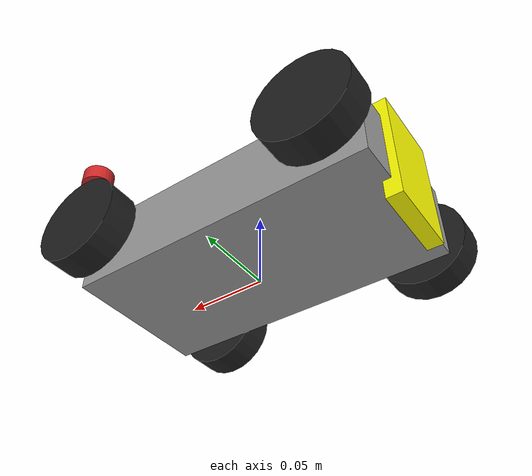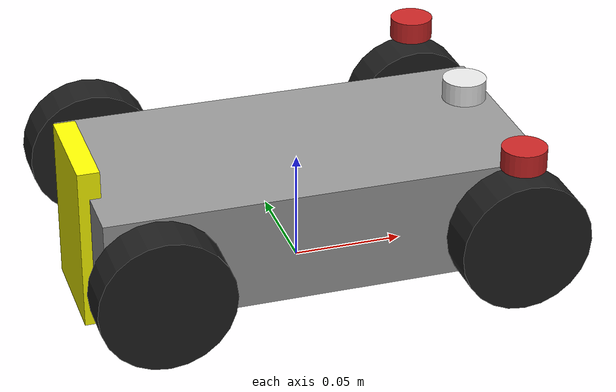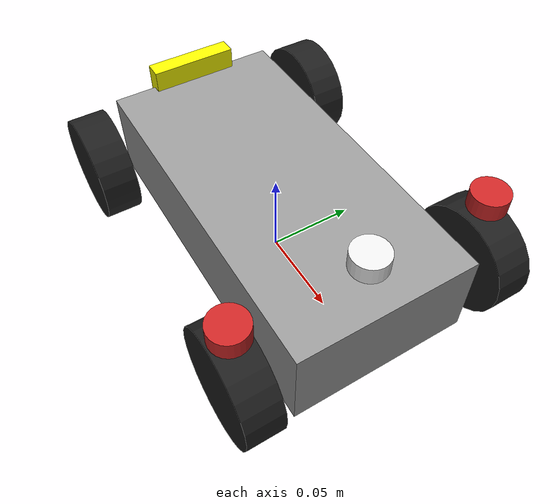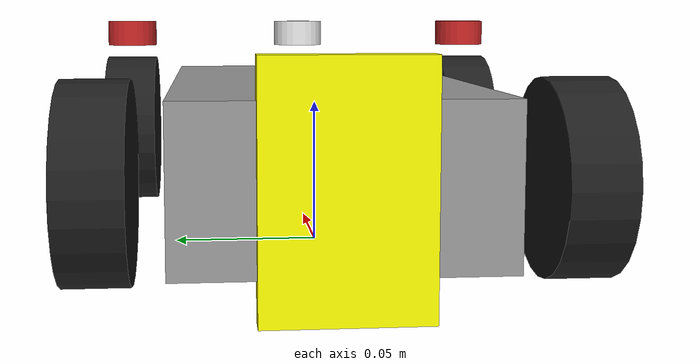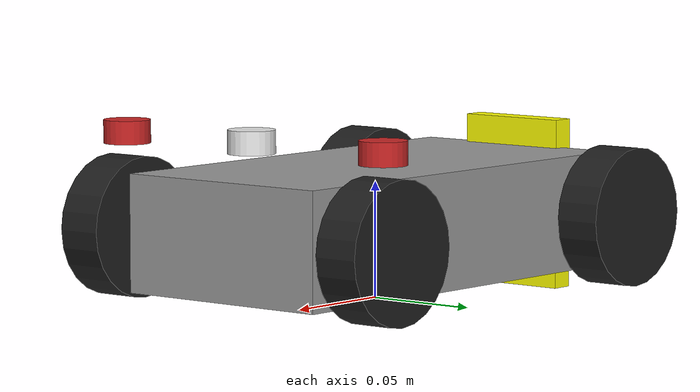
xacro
<?xml version="1.0"?>
<robot name="racebot" xmlns:xacro="http://wiki.ros.org/xacro">
  <!-- Include xacro for inertials, materials and wheels -->
  <xacro:include filename="$(find nav2_bringup)/ackermann_model/steer_base/wheel.xacro" />

  <xacro:property name="M_PI" value="3.1415926535897931" />
  <xacro:arg name="lidar_visual" default="true" />

  <!-- Math constants -->
  <xacro:property name="deg_to_rad" value="0.01745329251994329577" />

  <!-- Robot base dimensions -->
  <xacro:property name="base_length" value="0.2" />
  <xacro:property name="base_width" value="0.1" />
  <xacro:property name="base_height" value="0.05" />
  <xacro:property name="base_mass" value="300" />

  <!-- Wheel link dimensions -->
  <xacro:property name="wheel_radius" value="0.03" />
  <xacro:property name="wheel_thickness" value="0.02" />
  <xacro:property name="wheel_mass" value="30.0" />

  <!-- Steering link dimensions -->
  <xacro:property name="steer_radius" value="0.01" />
  <xacro:property name="steer_thickness" value="0.01" />
  <xacro:property name="steer_mass" value="15" />

  <!-- Axle positions -->
  <xacro:property name="axle_offset" value="0.02" />
  <xacro:property name="steer_offset" value="0.01" />

  <link name="base_footprint" />
  <joint name="base_joint" type="fixed">
    <parent link="base_footprint" />
    <child link="base_link" />
    <origin xyz="0 0 ${base_height/1.5}" rpy="0 0 0" />
  </joint>

  <!-- Base link -->
  <link name="base_link">
    <visual>
      <origin xyz="0 0 0" rpy="0 0 0" />
      <geometry>
        <box size="${base_length} ${base_width} ${base_height}" />
      </geometry>
      <material name="gray" />
    </visual>
    <collision>
      <origin xyz="0 0 0" rpy="0 0 0" />
      <geometry>
        <box size="${base_length/2} ${base_width/2} ${base_height/2}" />
      </geometry>
    </collision>
    <xacro:solid_cuboid_inertial rpy="0 0 0" xyz="0 0 0" mass="${base_mass}" x="${base_length}"
      y="${base_width}" z="${base_height}" />
  </link>

  <!-- Front steer and rear wheel joints required for ackermann_steering_controller -->
  <xacro:front_steer name="front" parent="base" steer_radius="${steer_radius}"
    steer_thickness="${steer_thickness}"
    steer_mass="${steer_mass}" base_length="${base_length}" base_width="${base_width}"
    axle_offset="${axle_offset}"
    steer_height="${wheel_radius+steer_offset}"></xacro:front_steer>

  <!-- Rear Link -->
  <xacro:rear_wheel name="rear" parent="base" wheel_radius="${wheel_radius/4}"
    wheel_thickness="${wheel_thickness/2}" wheel_mass="${wheel_mass/32}">
    <origin xyz="${-base_length/2+axle_offset} 0 0" rpy="${-90 * deg_to_rad} 0 0" />
  </xacro:rear_wheel>

  <!-- Steerable front wheels -->
  <xacro:front_wheel_lr name="front_right" parent="base" reflect="-1" wheel_radius="${wheel_radius}"
    wheel_thickness="${wheel_thickness}"
    wheel_mass="${wheel_mass}" steer_radius="${steer_radius}" steer_thickness="${steer_thickness}"
    steer_mass="${steer_mass}"
    base_length="${base_length}" base_width="${base_width}" axle_offset="${axle_offset}"
    steer_height="${wheel_radius+steer_offset}"></xacro:front_wheel_lr>

  <xacro:front_wheel_lr name="front_left" parent="base" reflect="1" wheel_radius="${wheel_radius}"
    wheel_thickness="${wheel_thickness}"
    wheel_mass="${wheel_mass}" steer_radius="${steer_radius}" steer_thickness="${steer_thickness}"
    steer_mass="${steer_mass}"
    base_length="${base_length}" base_width="${base_width}" axle_offset="${axle_offset}"
    steer_height="${wheel_radius+steer_offset}"></xacro:front_wheel_lr>

  <!-- Rear wheels -->
  <xacro:rear_wheel_lr name="rear_right" parent="base" wheel_radius="${wheel_radius}"
    wheel_thickness="${wheel_thickness}" wheel_mass="${wheel_mass}">
    <origin xyz="${-base_length/2+axle_offset} ${-base_width/2-axle_offset} 0"
      rpy="${-90 * deg_to_rad} 0 0" />
  </xacro:rear_wheel_lr>

  <xacro:rear_wheel_lr name="rear_left" parent="base" wheel_radius="${wheel_radius}"
    wheel_thickness="${wheel_thickness}" wheel_mass="${wheel_mass}">
    <origin xyz="${-base_length/2+axle_offset} ${+base_width/2+axle_offset} 0"
      rpy="${-90 * deg_to_rad} 0 0" />
  </xacro:rear_wheel_lr>

  <!-- Colour -->
  <gazebo reference="base_link">
    <material>Gazebo/Residential</material>
  </gazebo>

  <!-- 虚拟方向盘 -->
  <!-- Virtual Steering wheel -->
  <link name="virtual_steer_link">
    <visual>
      <origin xyz="0.0 0.0 0.0" rpy="0.0 0.0 0.0" />
      <geometry>
        <box size="0.01 0.05 0.075" />
      </geometry>
      <material name="">
        <color rgba="1.0 1.0 0.0 1" />
      </material>
    </visual>
    <inertial>
      <origin xyz="0.0 0.0 0.0" rpy="0.0 0.0 0.0" />
      <mass value="0.001" />
      <inertia ixx="0.0" ixy="0.0" ixz="0.0" iyy="0.0" iyz="0.0" izz="0.0" />
    </inertial>
  </link>
  <joint name="virtual_steering_wheel_joint" type="revolute">
    <origin xyz="${-base_length/2} 0.0 0.0" rpy="0.0 0.0 0.0" />
    <parent link="base_link" />
    <child link="virtual_steer_link" />
    <axis xyz="-1 0 0" />
    <limit lower="-3" upper="3" effort="200" velocity="20" />
  </joint>

</robot>

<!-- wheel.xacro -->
<robot name="wheel" xmlns:xacro="http://wiki.ros.org/xacro">
  <!-- Include xacro for materials and inertials -->
  <xacro:include filename="$(find nav2_bringup)/ackermann_model/steer_base/materials.xacro" />
  <xacro:include filename="$(find nav2_bringup)/ackermann_model/steer_base/inertials.xacro" />

  <!-- Properties -->
  <xacro:property name="steer_effort" value="10.0" />
  <xacro:property name="steer_velocity" value="10.0" />
  <xacro:property name="steer_limit_deg" value="45.0" />
  <xacro:property name="deg_to_rad" value="0.01745329251994329577" />

  <!-- Bicycle model front steering link (required for steer_drive_controller) -->
  <xacro:macro name="front_steer"
    params="
      name
      parent
      steer_radius
      steer_thickness
      steer_mass
      base_length
      base_width
      axle_offset
      steer_height">
    <link name="${name}_steer_link">
      <visual>
        <origin xyz="0 0 0" rpy="0 0 0" />
        <geometry>
          <cylinder radius="${steer_radius}" length="${steer_thickness}" />
        </geometry>
        <material name="white" />
      </visual>
      <collision>
        <origin xyz="0 0 0" rpy="0 0 0" />
        <geometry>
          <cylinder radius="${steer_radius}" length="${steer_thickness}" />
        </geometry>
      </collision>
      <xacro:solid_cylinder_inertial
        rpy="0 0 0" xyz="0 0 0"
        mass="${steer_mass}"
        radius="${steer_radius}" length="${steer_thickness}" />
    </link>

    <joint name="${name}_steer_joint" type="revolute">
      <parent link="${parent}_link" />
      <child link="${name}_steer_link" />
      <origin xyz="${base_length/2-axle_offset} 0 ${steer_height}" rpy="0 0 0" />
      <axis xyz="0 0 1" />
      <limit effort="${steer_effort}"
        lower="${-180.0 * deg_to_rad}" upper="${180.0 * deg_to_rad}"
        velocity="${steer_velocity}" />
    </joint>

    <transmission name="${name}_steer_joint_trans">
      <type>transmission_interface/SimpleTransmission</type>
      <actuator name="${name}_steer_joint_motor">
        <mechanicalReduction>1</mechanicalReduction>
        <hardwareInterface>hardware_interface/PositionJointInterface</hardwareInterface>
      </actuator>
      <joint name="${name}_steer_joint">
        <hardwareInterface>hardware_interface/PositionJointInterface</hardwareInterface>
      </joint>
    </transmission>

    <gazebo reference="${name}_steer_link">
      <material>Gazebo/White</material>
    </gazebo>
  </xacro:macro>

  <!-- Car steering model front (steerable) wheel links (left/right) -->
  <xacro:macro name="front_wheel_lr"
    params="
      name
      parent
      reflect
      wheel_radius
      wheel_thickness
      wheel_mass
      steer_radius
      steer_thickness
      steer_mass
      base_length
      base_width
      axle_offset
      steer_height">
    <link name="${name}_steer_link">
      <visual>
        <origin xyz="0 0 0" rpy="0 0 0" />
        <geometry>
          <cylinder radius="${steer_radius}" length="${steer_thickness}" />
        </geometry>
        <material name="red" />
      </visual>
      <collision>
        <origin xyz="0 0 0" rpy="0 0 0" />
        <geometry>
          <cylinder radius="${steer_radius}" length="${steer_thickness}" />
        </geometry>
      </collision>
      <xacro:solid_cylinder_inertial
        rpy="0 0 0" xyz="0 0 0"
        mass="${steer_mass}"
        radius="${steer_radius}" length="${steer_thickness}" />
    </link>

    <joint name="${name}_steer_joint" type="revolute">
      <parent link="${parent}_link" />
      <child link="${name}_steer_link" />
      <origin
        xyz="${base_length/2-axle_offset} ${reflect*(base_width/2+axle_offset)} ${steer_height}"
        rpy="0 0 0" />
      <axis xyz="0 0 1" />
      <limit effort="${steer_effort}"
        lower="${steer_limit_deg * deg_to_rad * -1.0}" upper="${steer_limit_deg * deg_to_rad}"
        velocity="${steer_velocity}" />
    </joint>

    <link name="${name}_wheel_link">
      <visual>
        <origin xyz="0 0 0" rpy="0 0 0" />
        <geometry>
          <cylinder radius="${wheel_radius}" length="${wheel_thickness}" />
        </geometry>
        <material name="black" />
      </visual>
      <collision>
        <origin xyz="0 0 0" rpy="0 0 0" />
        <geometry>
          <cylinder radius="${wheel_radius}" length="${wheel_thickness}" />
        </geometry>
      </collision>
      <xacro:solid_cylinder_inertial
        rpy="0 0 0" xyz="0 0 0"
        mass="${wheel_mass}"
        radius="${wheel_radius}" length="${wheel_thickness}" />
    </link>

    <joint name="${name}_wheel_joint" type="continuous">
      <parent link="${name}_steer_link" />
      <child link="${name}_wheel_link" />
      <origin xyz="0 0 ${-steer_height}" rpy="${-90 * deg_to_rad} 0 0" />
      <axis xyz="0 0 1" />
    </joint>

    <transmission name="${name}_steer_joint_trans">
      <type>transmission_interface/SimpleTransmission</type>
      <actuator name="${name}_steer_joint_motor">
        <mechanicalReduction>1</mechanicalReduction>
        <hardwareInterface>hardware_interface/PositionJointInterface</hardwareInterface>
      </actuator>
      <joint name="${name}_steer_joint">
        <hardwareInterface>hardware_interface/PositionJointInterface</hardwareInterface>
      </joint>
    </transmission>

    <transmission name="${name}_wheel_joint_trans">
      <type>transmission_interface/SimpleTransmission</type>
      <actuator name="${name}_wheel_joint_motor">
        <mechanicalReduction>1</mechanicalReduction>
        <hardwareInterface>hardware_interface/VelocityJointInterface</hardwareInterface>
      </actuator>
      <joint name="${name}_wheel_joint">
        <hardwareInterface>hardware_interface/VelocityJointInterface</hardwareInterface>
      </joint>
    </transmission>

    <gazebo reference="${name}_steer_link">
      <material>Gazebo/Red</material>
    </gazebo>

    <gazebo reference="${name}_wheel_link">
      <material>Gazebo/Black</material>
    </gazebo>
  </xacro:macro>

  <!-- Bicycle model rear wheel link (required for steer_drive_controller) -->
  <xacro:macro name="rear_wheel"
    params="
      name
      parent
      wheel_radius
      wheel_thickness
      wheel_mass
      *origin">
    <link name="${name}_wheel_link">
      <visual>
        <origin xyz="0 0 0" rpy="0 0 0" />
        <geometry>
          <cylinder radius="${wheel_radius}" length="${wheel_thickness}" />
        </geometry>
        <material name="white" />
      </visual>
      <collision>
        <origin xyz="0 0 0" rpy="0 0 0" />
        <geometry>
          <cylinder radius="${wheel_radius}" length="${wheel_thickness}" />
        </geometry>
      </collision>
      <xacro:solid_cylinder_inertial
        rpy="0 0 0" xyz="0 0 0"
        mass="${wheel_mass}"
        radius="${wheel_radius}" length="${wheel_thickness}" />
    </link>

    <joint name="${name}_wheel_joint" type="continuous">
      <parent link="${parent}_link" />
      <child link="${name}_wheel_link" />
      <xacro:insert_block name="origin" />
      <axis xyz="0 0 1" />
    </joint>

    <transmission name="${name}_wheel_joint_trans">
      <type>transmission_interface/SimpleTransmission</type>
      <actuator name="${name}_wheel_joint_motor">
        <mechanicalReduction>1</mechanicalReduction>
        <hardwareInterface>hardware_interface/VelocityJointInterface</hardwareInterface>
      </actuator>
      <joint name="${name}_wheel_joint">
        <hardwareInterface>hardware_interface/VelocityJointInterface</hardwareInterface>
      </joint>
    </transmission>

    <gazebo reference="${name}_wheel_link">
      <material>Gazebo/White</material>
    </gazebo>
  </xacro:macro>

  <!-- Bicycle model front wheel link (passive - no transmission) -->
  <xacro:macro name="front_wheel"
    params="
      name
      parent
      wheel_radius
      wheel_thickness
      wheel_mass
      *origin">
    <link name="${name}_wheel_link">
      <visual>
        <origin xyz="0 0 0" rpy="0 0 0" />
        <geometry>
          <cylinder radius="${wheel_radius}" length="${wheel_thickness}" />
        </geometry>
        <material name="white" />
      </visual>
      <collision>
        <origin xyz="0 0 0" rpy="0 0 0" />
        <geometry>
          <cylinder radius="${wheel_radius}" length="${wheel_thickness}" />
        </geometry>
      </collision>
      <xacro:solid_cylinder_inertial
        rpy="0 0 0" xyz="0 0 0"
        mass="${wheel_mass}"
        radius="${wheel_radius}" length="${wheel_thickness}" />
    </link>

    <joint name="${name}_wheel_joint" type="continuous">
      <parent link="${parent}_link" />
      <child link="${name}_wheel_link" />
      <xacro:insert_block name="origin" />
      <axis xyz="0 0 1" />
    </joint>

    <gazebo reference="${name}_wheel_link">
      <material>Gazebo/White</material>
    </gazebo>

    <gazebo reference="${name}_wheel_joint">
      <provideFeedback>true</provideFeedback>
    </gazebo>
  </xacro:macro>

  <!-- Car steering model rear wheel links (left/right) -->
  <xacro:macro name="rear_wheel_lr"
    params="
      name
      parent
      wheel_radius
      wheel_thickness
      wheel_mass
      *origin">
    <link name="${name}_wheel_link">
      <visual>
        <origin xyz="0 0 0" rpy="0 0 0" />
        <geometry>
          <cylinder radius="${wheel_radius}" length="${wheel_thickness}" />
        </geometry>
        <material name="black" />
      </visual>
      <collision>
        <origin xyz="0 0 0" rpy="0 0 0" />
        <geometry>
          <cylinder radius="${wheel_radius}" length="${wheel_thickness}" />
        </geometry>
      </collision>
      <xacro:solid_cylinder_inertial
        rpy="0 0 0" xyz="0 0 0"
        mass="${wheel_mass}"
        radius="${wheel_radius}" length="${wheel_thickness}" />
    </link>

    <joint name="${name}_wheel_joint" type="continuous">
      <parent link="${parent}_link" />
      <child link="${name}_wheel_link" />
      <xacro:insert_block name="origin" />
      <axis xyz="0 0 1" />
    </joint>

    <transmission name="${name}_wheel_joint_trans">
      <type>transmission_interface/SimpleTransmission</type>
      <actuator name="${name}_wheel_joint_motor">
        <mechanicalReduction>1</mechanicalReduction>
        <hardwareInterface>hardware_interface/VelocityJointInterface</hardwareInterface>
      </actuator>
      <joint name="${name}_wheel_joint">
        <hardwareInterface>hardware_interface/VelocityJointInterface</hardwareInterface>
      </joint>
    </transmission>

    <gazebo reference="${name}_wheel_link">
      <material>Gazebo/Black</material>
    </gazebo>
  </xacro:macro>
</robot>
